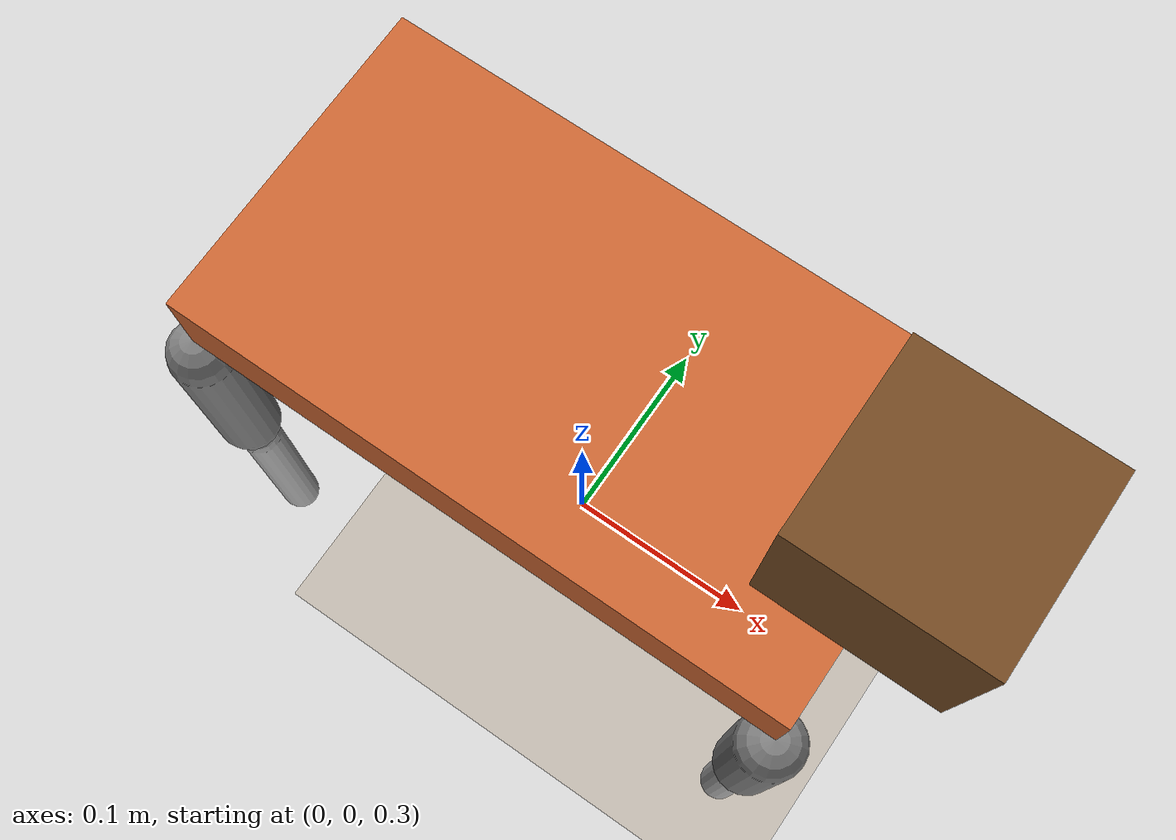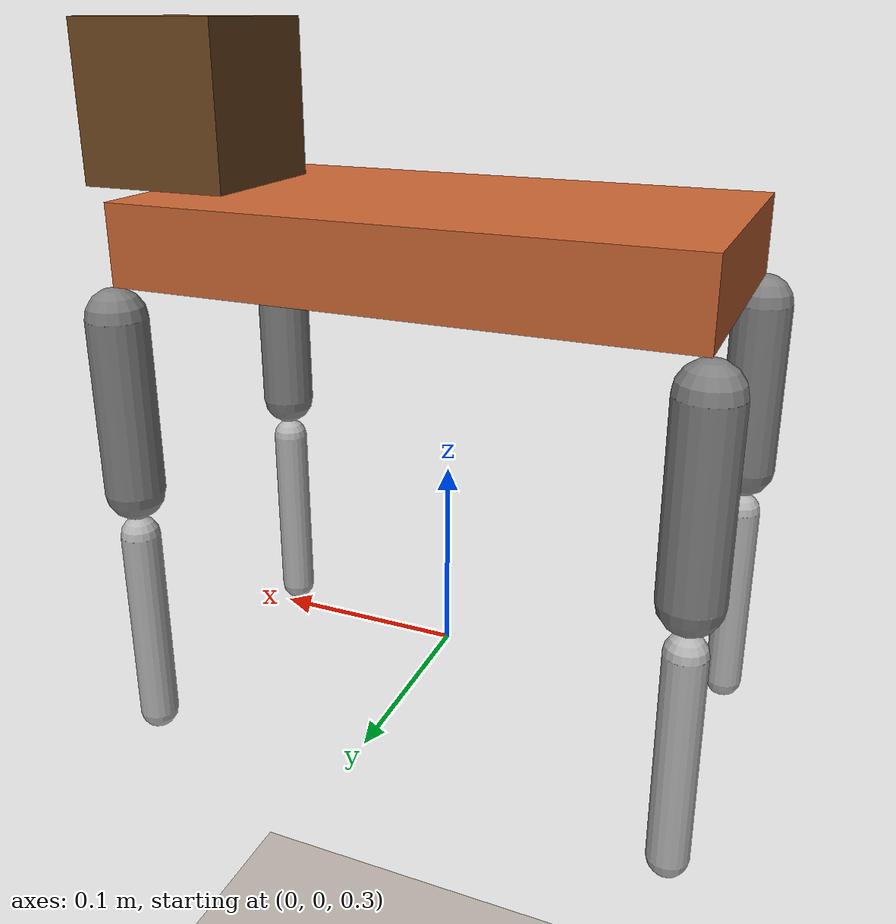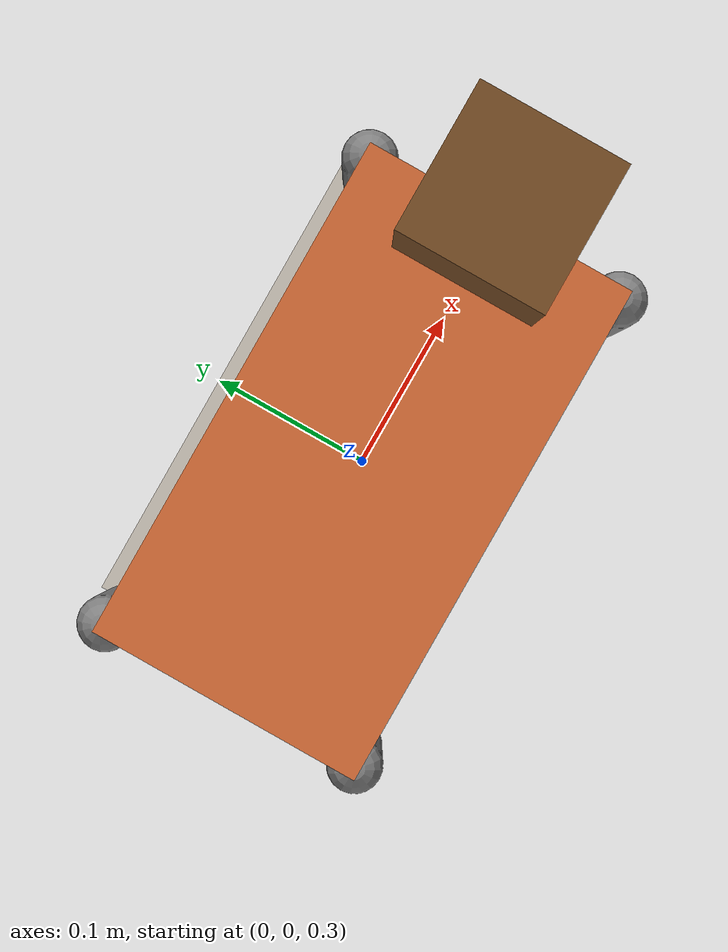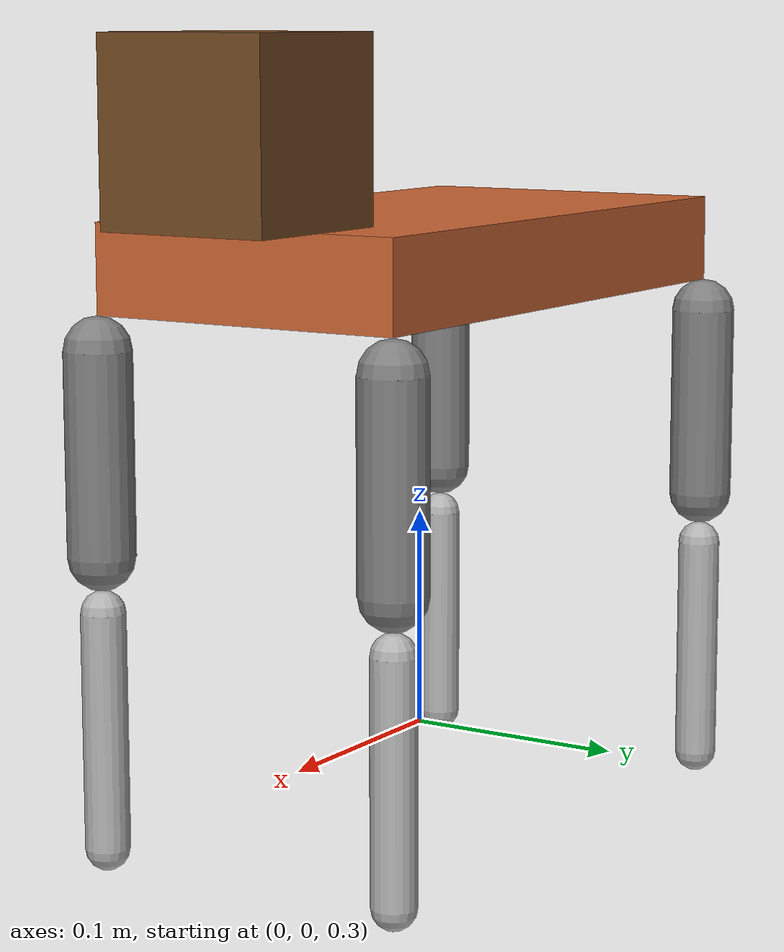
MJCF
<mujoco>
    <compiler angle="radian" meshdir="meshes" autolimits="true" />
    <option timestep="0.002" gravity="0 0 -9.81" integrator="implicitfast" density="0" viscosity="0" />
    <asset>
        <!-- 天空盒纹理 -->
        <texture type="skybox" file="sea.png" gridsize="3 4" gridlayout=".U..LFRB.D.." />

        <!-- 地面纹理和材质 -->
        <texture name="floor_tex" type="2d" file="Concrete1.png" width="512" height="512" hflip="false" vflip="false" content_type="image/png"/>
        <material name="floor_mat" reflectance="0.03" texture="floor_tex" texrepeat="20 20" texuniform="false" specular="0.1" shininess="0.2" rgba="1 1 1 1" />

        <!-- 竖直长方体材质 -->
        <material name="cube_mat" rgba="0.2 0.6 0.8 1" specular="0.2" shininess="0.3" />
        <!-- 平放长方体材质 -->
        <material name="flat_cube_mat" rgba="0.8 0.4 0.2 1" specular="0.2" shininess="0.3" />
        <!-- link小长方体材质（新增二级link用浅灰色区分）-->
        <material name="link_mat" rgba="0.5 0.5 0.5 1" specular="0.1" shininess="0.2" />
        <material name="link2_mat" rgba="0.7 0.7 0.7 1" specular="0.1" shininess="0.2" />

        <!-- 狗头表情纹理（严格遵循官方 2d 纹理规范） -->
        <texture name="face_tex" type="2d" file="dog_face.png" width="256" height="256" content_type="image/png" colorspace="sRGB" hflip="false" vflip="false" nchannel="3" />
        <!-- 绑定表情纹理到狗头材质 -->
        <material name="head_mat" texture="face_tex" texrepeat="1 1" texuniform="false" specular="0.2" shininess="0.3" rgba="0.6 0.4 0.2 1" />

    </asset>

    <worldbody>
        <geom name="floor" pos="0 0 0" size="50 50 0.1" type="plane" material="floor_mat" condim="3" />

        <light directional="true" ambient=".3 .3 .3" pos="30 30 30" dir="0 -.5 -1"
            diffuse=".5 .5 .5" specular=".5 .5 .5" />

        <!-- 平放长方体 30cm×20cm×4cm -->
        <body name="flat_cube" pos="0 0 0.52">
        <freejoint/>
            <geom name="flat_cube_geom" type="box" size="0.14 0.075 0.02" material="flat_cube_mat" mass="0.2" condim="3"/>

            <site name="imu_site" pos="0 0 0" quat="1 0 0 0" size="0.01 0.01 0.01" rgba="1 0 0 0.5"/>

            <!--狗头-->
            <body name="dog_head" pos="0.14 0 0.06">
                <geom name="head_geom" type="box" size="0.04 0.04 0.04" material="head_mat" mass="0.05" condim="3" euler="1.5708 1.5708 0" />
            </body>

            <body name="h_back_right" pos="-0.14 -0.075 -0.08">
                <joint type="hinge" name="h_back_right" pos="0 0 0.045" axis="0 1 0"
                       damping="0.1" frictionloss="0.01" stiffness="0"
                      range="-1.57 1.57" limited="true" armature="0.02" />
                <geom name="link1_geom" type="capsule" size="0.015 0.045"  euler="0 0 0" material="link_mat" mass=".1" condim="3"/>

                <body name="l_back_right" pos="0 0 -0.12315">
                    <joint type="hinge" name="l_back_right" pos="0 0 0.06315" axis="0 1 0"
                           damping="0.1" frictionloss="0.01" stiffness="0"
                          range="-3.1416 0" limited="true" armature="0.02" />
                    <geom name="link1_2_geom" type="capsule" size="0.01 0.05315" material="link2_mat" mass=".1" condim="3"/>
                </body>
            </body>

            <body name="h_front_right" pos="0.14 -0.075 -0.08">
                <joint type="hinge" name="h_front_right" pos="0 0 0.045" axis="0 1 0"
                       damping="0.1" frictionloss="0.01" stiffness="0"
                      range="-1.57 1.57" limited="true" armature="0.02" />
                  <geom name="link2_geom" type="capsule" size="0.015 0.045" material="link_mat" mass=".1" condim="3"/>

                <body name="l_front_right" pos="0 0 -0.12315">
                    <joint type="hinge" name="l_front_right" pos="0 0 0.06315" axis="0 1 0"
                           damping="0.1" frictionloss="0.01" stiffness="0"
                          range="-3.1416 0" limited="true" armature="0.02" />
                      <geom name="link2_2_geom" type="capsule" size="0.01 0.05315" material="link2_mat" mass=".1" condim="3"/>
                </body>
            </body>

            <body name="h_back_left" pos="-0.14 0.075 -0.08">
                <joint type="hinge" name="h_back_left" pos="0 0 0.045" axis="0 1 0"
                       damping="0.1" frictionloss="0.01" stiffness="0"
                      range="-1.57 1.57" limited="true" armature="0.02" />
                  <geom name="link3_geom" type="capsule" size="0.015 0.045" material="link_mat" mass=".1" condim="3"/>

                <body name="l_back_left" pos="0 0 -0.12315">
                    <joint type="hinge" name="l_back_left" pos="0 0 0.06315" axis="0 1 0"
                           damping="0.1" frictionloss="0.01" stiffness="0"
                          range="-3.1416 0" limited="true" armature="0.02" />
                      <geom name="link3_2_geom" type="capsule" size="0.01 0.05315" material="link2_mat" mass=".1" condim="3"/>
                </body>
            </body>

            <body name="h_front_left" pos="0.14 0.075 -0.08">
                <joint type="hinge" name="h_front_left" pos="0 0 0.045" axis="0 1 0"
                       damping="0.1" frictionloss="0.01" stiffness="0"
                      range="-1.57 1.57" limited="true" armature="0.02" />
                  <geom name="link4_geom" type="capsule" size="0.015 0.045" material="link_mat" mass=".1" condim="3"/>

                <body name="l_front_left" pos="0 0 -0.12315">
                    <joint type="hinge" name="l_front_left" pos="0 0 0.06315" axis="0 1 0"
                           damping="0.1" frictionloss="0.01" stiffness="0"
                          range="-3.1416 0" limited="true" armature="0.02" />
                      <geom name="link4_2_geom" type="capsule" size="0.01 0.05315" material="link2_mat" mass=".1" condim="3"/>
                </body>
            </body>
        </body>
    </worldbody>

    <sensor>
        <!-- 机身姿态四元数 -->
        <framequat name="imu_quat" objtype="site" objname="imu_site" />
        <!-- 陀螺仪（角速度） -->
        <gyro name="imu_gyro" site="imu_site" noise="0.001" cutoff="100" />
        <!-- 加速度计（线性加速度，包含重力） -->
        <accelerometer name="imu_accel" site="imu_site" noise="0.01" cutoff="100" />
        <!-- 线速度 -->
        <framelinvel name="imu_linvel" objtype="site" objname="imu_site" />
    </sensor>

    <!-- 角度（位置）控制执行器：inheritrange now works -->
    <actuator>
        <position name="h_back_right_pos" joint="h_back_right" kp="30" dampratio="1" inheritrange="1.0"/>
        <position name="l_back_right_pos" joint="l_back_right" kp="30" dampratio="1" inheritrange="1.0"/>
        <position name="h_front_right_pos" joint="h_front_right" kp="30" dampratio="1" inheritrange="1.0"/>
        <position name="l_front_right_pos" joint="l_front_right" kp="30" dampratio="1" inheritrange="1.0"/>
        <position name="h_back_left_pos" joint="h_back_left" kp="30" dampratio="1" inheritrange="1.0"/>
        <position name="l_back_left_pos" joint="l_back_left" kp="30" dampratio="1" inheritrange="1.0"/>
        <position name="h_front_left_pos" joint="h_front_left" kp="30" dampratio="1" inheritrange="1.0"/>
        <position name="l_front_left_pos" joint="l_front_left" kp="30" dampratio="1" inheritrange="1.0"/>
    </actuator>
</mujoco>
